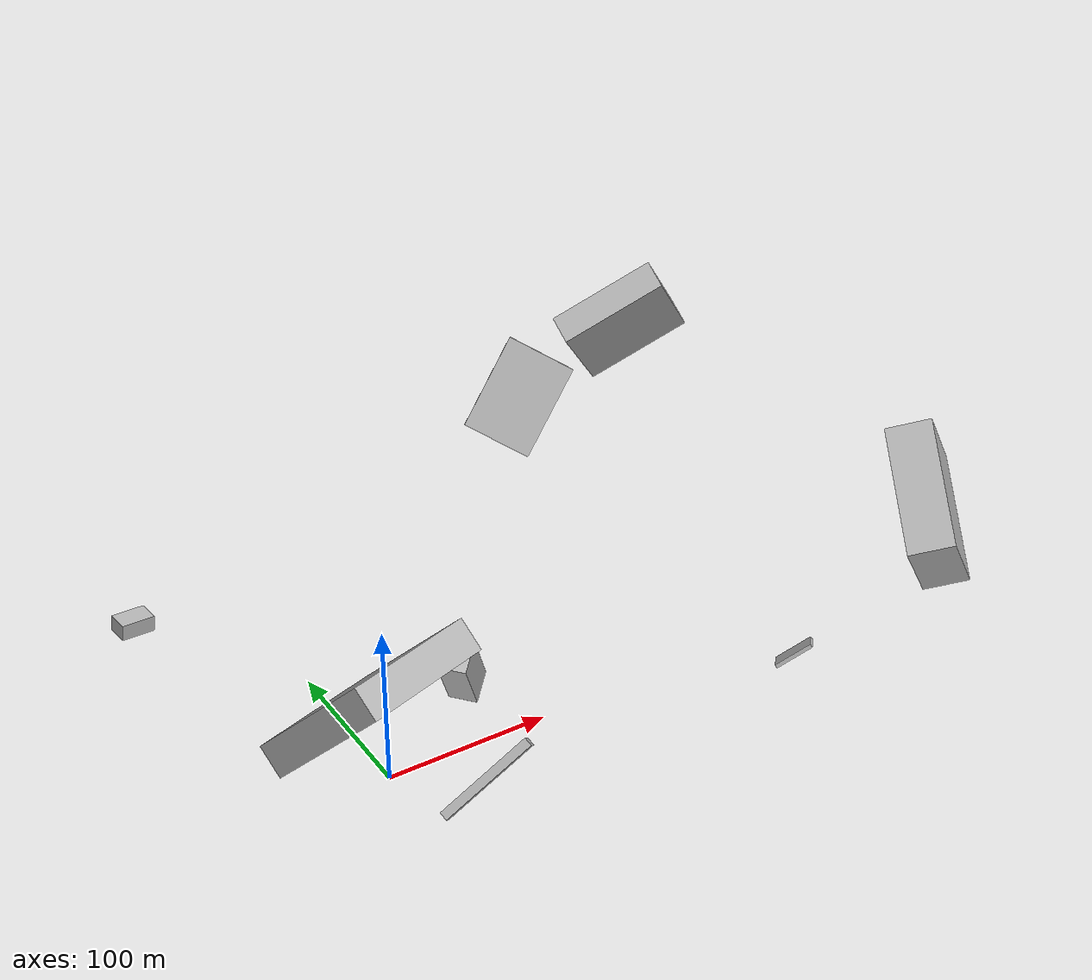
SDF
<sdf version="1.6">
 <world name="default">
  <scene>
   <sky><clouds><speed>12</speed></clouds></sky>
   <ambient>0.4 0.4 0.4 1</ambient>
   <background>0.7 0.7 0.7 1</background>
   <shadows>1</shadows>
  </scene>
  <gravity>0 0 -9.8066</gravity>
  <magnetic_field>6e-06 2.3e-05 -4.2e-05</magnetic_field>
  <physics default="0" name="default_physics" type="ode">
   <ode>
    <solver>
     <type>quick</type>
     <iters>10</iters>
     <sor>1.0</sor>
     <use_dynamic_moi_rescaling>0</use_dynamic_moi_rescaling>
    </solver>
    <constraints>
     <cfm>0</cfm>
     <erp>0.2</erp>
     <contact_max_correcting_vel>100</contact_max_correcting_vel>
     <contact_surface_layer>0.001</contact_surface_layer>
    </constraints>
   </ode>
   <max_step_size>0.004</max_step_size>
   <real_time_factor>1</real_time_factor>
   <real_time_update_rate>250</real_time_update_rate>
  </physics>
  <light name="sun" type="directional">
   <pose>0 0 10 0 0 0</pose>
   <diffuse>0.8 0.8 0.8 1</diffuse>
   <specular>0.2 0.2 0.2 1</specular>
   <attenuation>
    <range>1000</range>
    <constant>0.9</constant>
    <linear>0.01</linear>
    <quadratic>0.001</quadratic>
   </attenuation>
   <direction>-0.5 0.1 -0.9</direction>
  </light>
  <model name="building_1">
   <static>0</static>
   <pose>265.3160778234046 232.35781549559687 77.90501577110555 0.797369383427548 0.8347133600429475 0.6235478064443388</pose>
   <link name="link">
    <gravity>0</gravity>
    <pose>0 0 35.5 0 0 0</pose>
    <collision name="collision"><geometry><box><size>71 19 71</size></box></geometry></collision>
    <visual name="visual">
     <cast_shadows>0</cast_shadows>
     <geometry><box><size>71 19 71</size></box></geometry>
     <material>
      <script>
       <uri>model://HANNAS_wall/materials/scripts</uri>
       <uri>model://HANNAS_wall/materials/textures</uri>
       <name>vrc/HANNAS_wall</name>
      </script>
     </material>
    </visual>
   </link>
  </model>
  <model name="building_2">
   <static>0</static>
   <pose>293.5237152897864 -105.96959356914793 97.57157539860825 0.5060788951992975 -0.9105591749016898 -2.605964270300093</pose>
   <link name="link">
    <gravity>0</gravity>
    <pose>0 0 38.5 0 0 0</pose>
    <collision name="collision"><geometry><box><size>58 27 77</size></box></geometry></collision>
    <visual name="visual">
     <cast_shadows>0</cast_shadows>
     <geometry><box><size>58 27 77</size></box></geometry>
     <material>
      <script>
       <uri>model://HANNAS_wall/materials/scripts</uri>
       <uri>model://HANNAS_wall/materials/textures</uri>
       <name>vrc/HANNAS_wall</name>
      </script>
     </material>
    </visual>
   </link>
  </model>
  <model name="building_3">
   <static>0</static>
   <pose>-23.74204613605793 -91.40756298720179 152.02514038723328 -1.4047073865694122 0.7887901092561755 2.093573195763928</pose>
   <link name="link">
    <gravity>0</gravity>
    <pose>0 0 40.0 0 0 0</pose>
    <collision name="collision"><geometry><box><size>80 18 80</size></box></geometry></collision>
    <visual name="visual">
     <cast_shadows>0</cast_shadows>
     <geometry><box><size>80 18 80</size></box></geometry>
     <material>
      <script>
       <uri>model://HANNAS_wall/materials/scripts</uri>
       <uri>model://HANNAS_wall/materials/textures</uri>
       <name>vrc/HANNAS_wall</name>
      </script>
     </material>
    </visual>
   </link>
  </model>
  <model name="building_4">
   <static>0</static>
   <pose>-78.42950419490164 175.84264903868797 29.74169755474765 -1.7755365458506578 1.4594438324039876 3.0555112887202895</pose>
   <link name="link">
    <gravity>0</gravity>
    <pose>0 0 6.5 0 0 0</pose>
    <collision name="collision"><geometry><box><size>10 21 13</size></box></geometry></collision>
    <visual name="visual">
     <cast_shadows>0</cast_shadows>
     <geometry><box><size>10 21 13</size></box></geometry>
     <material>
      <script>
       <uri>model://HANNAS_wall/materials/scripts</uri>
       <uri>model://HANNAS_wall/materials/textures</uri>
       <name>vrc/HANNAS_wall</name>
      </script>
     </material>
    </visual>
   </link>
  </model>
  <model name="building_5">
   <static>0</static>
   <pose>37.54838195723596 -24.698081056551583 67.78162354660485 0.5389989645576243 0.034498780342319534 -0.8232073202345054</pose>
   <link name="link">
    <gravity>0</gravity>
    <pose>0 0 21.5 0 0 0</pose>
    <collision name="collision"><geometry><box><size>16 18 43</size></box></geometry></collision>
    <visual name="visual">
     <cast_shadows>0</cast_shadows>
     <geometry><box><size>16 18 43</size></box></geometry>
     <material>
      <script>
       <uri>model://HANNAS_wall/materials/scripts</uri>
       <uri>model://HANNAS_wall/materials/textures</uri>
       <name>vrc/HANNAS_wall</name>
      </script>
     </material>
    </visual>
   </link>
  </model>
  <model name="building_6">
   <static>0</static>
   <pose>-4.910787374204722 -117.75729499280875 88.49397913497383 -2.43771312949136 -0.6799590889385424 -0.22297417184018362</pose>
   <link name="link">
    <gravity>0</gravity>
    <pose>0 0 2.5 0 0 0</pose>
    <collision name="collision"><geometry><box><size>58 5 5</size></box></geometry></collision>
    <visual name="visual">
     <cast_shadows>0</cast_shadows>
     <geometry><box><size>58 5 5</size></box></geometry>
     <material>
      <script>
       <uri>model://HANNAS_wall/materials/scripts</uri>
       <uri>model://HANNAS_wall/materials/textures</uri>
       <name>vrc/HANNAS_wall</name>
      </script>
     </material>
    </visual>
   </link>
  </model>
  <model name="building_7">
   <static>0</static>
   <pose>144.681436147072 -154.89762691885772 125.28383454122425 -0.5062131588574036 0.8695304170609801 -1.0777628346573458</pose>
   <link name="link">
    <gravity>0</gravity>
    <pose>0 0 10.5 0 0 0</pose>
    <collision name="collision"><geometry><box><size>2 12 21</size></box></geometry></collision>
    <visual name="visual">
     <cast_shadows>0</cast_shadows>
     <geometry><box><size>2 12 21</size></box></geometry>
     <material>
      <script>
       <uri>model://HANNAS_wall/materials/scripts</uri>
       <uri>model://HANNAS_wall/materials/textures</uri>
       <name>vrc/HANNAS_wall</name>
      </script>
     </material>
    </visual>
   </link>
  </model>
  <model name="building_8">
   <static>0</static>
   <pose>186.50265866240443 169.8594718608608 98.93314802061911 0.7770319204698306 -0.9015463141376854 0.17862579043823565</pose>
   <link name="link">
    <gravity>0</gravity>
    <pose>0 0 1.0 0 0 0</pose>
    <collision name="collision"><geometry><box><size>61 44 2</size></box></geometry></collision>
    <visual name="visual">
     <cast_shadows>0</cast_shadows>
     <geometry><box><size>61 44 2</size></box></geometry>
     <material>
      <script>
       <uri>model://HANNAS_wall/materials/scripts</uri>
       <uri>model://HANNAS_wall/materials/textures</uri>
       <name>vrc/HANNAS_wall</name>
      </script>
     </material>
    </visual>
   </link>
  </model>
 </world>
</sdf>
